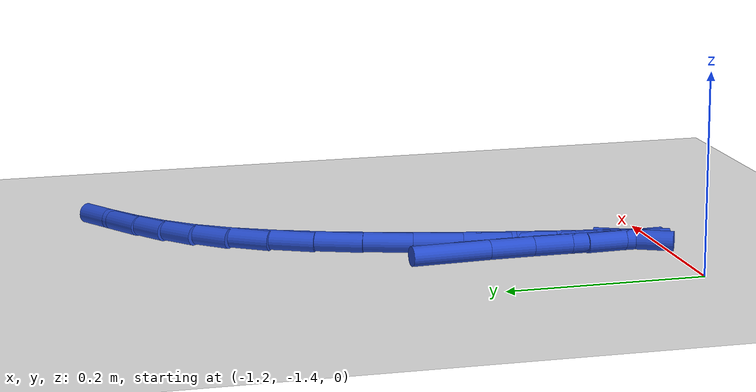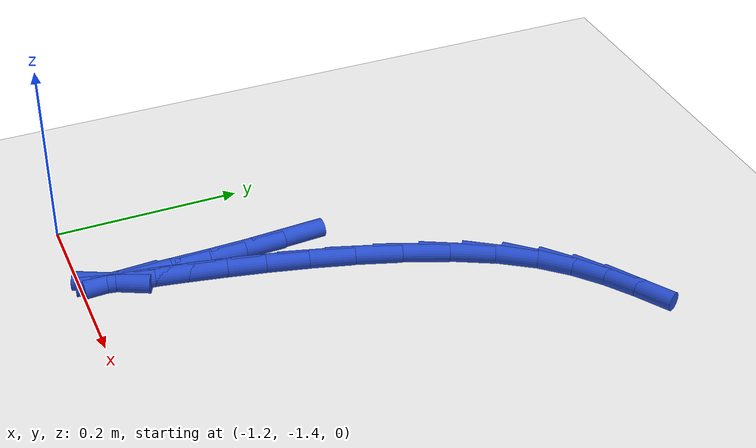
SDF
<sdf version="1.6">
 <world name="default">
  <model name="ground_plane">
   <static>1</static>
   <link name="link">
    <collision name="collision">
     <geometry><plane><normal>0 0 1</normal><size>100 100</size></plane></geometry>
     <surface><friction><ode><mu>100</mu><mu2>50</mu2></ode></friction></surface>
    </collision>
    <visual name="visual">
     <cast_shadows>0</cast_shadows>
     <geometry><plane><normal>0 0 1</normal><size>100 100</size></plane></geometry>
     <material>
      <script><uri>file://media/materials/scripts/gazebo.material</uri><name>Gazebo/WhiteGlow</name></script>
     </material>
    </visual>
   </link>
  </model>
  <model name="line">
   <link name="link_201">
    <pose>-1.0893821361360867 -1.1784222384112564 0.01 0 1.57 -1.5099549078218284</pose>
    <collision name="collision">
     <geometry><cylinder><radius>0.01</radius><length>0.08</length></cylinder></geometry>
    </collision>
    <visual name="visual">
     <material>
      <script><name>Gazebo/Blue</name><uri>file://media/materials/scripts/gazebo.material</uri></script>
     </material>
     <geometry><cylinder><radius>0.01</radius><length>0.08</length></cylinder></geometry>
    </visual>
   </link>
   <link name="link_202">
    <pose>-1.0866013172742164 -1.2240718440491876 0.01 0 1.57 -1.5435516769465956</pose>
    <collision name="collision">
     <geometry><cylinder><radius>0.01</radius><length>0.08</length></cylinder></geometry>
    </collision>
    <visual name="visual">
     <material>
      <script><name>Gazebo/Blue</name><uri>file://media/materials/scripts/gazebo.material</uri></script>
     </material>
     <geometry><cylinder><radius>0.01</radius><length>0.08</length></cylinder></geometry>
    </visual>
   </link>
   <link name="link_203">
    <pose>-1.0854175443406384 -1.267510832336968 0.01 0 1.57 -1.5667441597692473</pose>
    <collision name="collision">
     <geometry><cylinder><radius>0.01</radius><length>0.08</length></cylinder></geometry>
    </collision>
    <visual name="visual">
     <material>
      <script><name>Gazebo/Blue</name><uri>file://media/materials/scripts/gazebo.material</uri></script>
     </material>
     <geometry><cylinder><radius>0.01</radius><length>0.08</length></cylinder></geometry>
    </visual>
   </link>
   <link name="link_204">
    <pose>-1.0852605089746854 -1.3062640489364228 0.01 0 1.57 1.5613198097956762</pose>
    <collision name="collision">
     <geometry><cylinder><radius>0.01</radius><length>0.08</length></cylinder></geometry>
    </collision>
    <visual name="visual">
     <material>
      <script><name>Gazebo/Blue</name><uri>file://media/materials/scripts/gazebo.material</uri></script>
     </material>
     <geometry><cylinder><radius>0.01</radius><length>0.08</length></cylinder></geometry>
    </visual>
   </link>
   <link name="link_205">
    <pose>-1.0855599028156901 -1.3378563395093743 0.01 0 1.57 1.5623472241925498</pose>
    <collision name="collision">
     <geometry><cylinder><radius>0.01</radius><length>0.08</length></cylinder></geometry>
    </collision>
    <visual name="visual">
     <material>
      <script><name>Gazebo/Blue</name><uri>file://media/materials/scripts/gazebo.material</uri></script>
     </material>
     <geometry><cylinder><radius>0.01</radius><length>0.08</length></cylinder></geometry>
    </visual>
   </link>
   <link name="link_206">
    <pose>-1.085745417502986 -1.359812549717648 0.01 0 1.57 -1.5203960471916462</pose>
    <collision name="collision">
     <geometry><cylinder><radius>0.01</radius><length>0.08</length></cylinder></geometry>
    </collision>
    <visual name="visual">
     <material>
      <script><name>Gazebo/Blue</name><uri>file://media/materials/scripts/gazebo.material</uri></script>
     </material>
     <geometry><cylinder><radius>0.01</radius><length>0.08</length></cylinder></geometry>
    </visual>
   </link>
   <link name="link_207">
    <pose>-1.085248132235438 -1.3696709103077611 0.01 0 1.57 1.119772440966508</pose>
    <collision name="collision">
     <geometry><cylinder><radius>0.01</radius><length>0.08</length></cylinder></geometry>
    </collision>
    <visual name="visual">
     <material>
      <script><name>Gazebo/Blue</name><uri>file://media/materials/scripts/gazebo.material</uri></script>
     </material>
     <geometry><cylinder><radius>0.01</radius><length>0.08</length></cylinder></geometry>
    </visual>
   </link>
   <link name="link_208">
    <pose>-1.08364289087235 -1.3663564769589966 0.01 0 1.57 1.3814901009448788</pose>
    <collision name="collision">
     <geometry><cylinder><radius>0.01</radius><length>0.08</length></cylinder></geometry>
    </collision>
    <visual name="visual">
     <material>
      <script><name>Gazebo/Blue</name><uri>file://media/materials/scripts/gazebo.material</uri></script>
     </material>
     <geometry><cylinder><radius>0.01</radius><length>0.08</length></cylinder></geometry>
    </visual>
   </link>
   <link name="link_209">
    <pose>-1.0807716296163246 -1.3513708100348139 0.01 0 1.57 1.4009400455428023</pose>
    <collision name="collision">
     <geometry><cylinder><radius>0.01</radius><length>0.08</length></cylinder></geometry>
    </collision>
    <visual name="visual">
     <material>
      <script><name>Gazebo/Blue</name><uri>file://media/materials/scripts/gazebo.material</uri></script>
     </material>
     <geometry><cylinder><radius>0.01</radius><length>0.08</length></cylinder></geometry>
    </visual>
   </link>
   <link name="link_210">
    <pose>-1.0765053454093902 -1.3264958041468793 0.01 0 1.57 1.3970099627679942</pose>
    <collision name="collision">
     <geometry><cylinder><radius>0.01</radius><length>0.08</length></cylinder></geometry>
    </collision>
    <visual name="visual">
     <material>
      <script><name>Gazebo/Blue</name><uri>file://media/materials/scripts/gazebo.material</uri></script>
     </material>
     <geometry><cylinder><radius>0.01</radius><length>0.08</length></cylinder></geometry>
    </visual>
   </link>
   <link name="link_211">
    <pose>-1.0707150351935781 -1.2935133539068617 0.01 0 1.57 1.3836527331481097</pose>
    <collision name="collision">
     <geometry><cylinder><radius>0.01</radius><length>0.08</length></cylinder></geometry>
    </collision>
    <visual name="visual">
     <material>
      <script><name>Gazebo/Blue</name><uri>file://media/materials/scripts/gazebo.material</uri></script>
     </material>
     <geometry><cylinder><radius>0.01</radius><length>0.08</length></cylinder></geometry>
    </visual>
   </link>
   <link name="link_212">
    <pose>-1.0632716959109163 -1.2542053539264275 0.01 0 1.57 1.3634432633721643</pose>
    <collision name="collision">
     <geometry><cylinder><radius>0.01</radius><length>0.08</length></cylinder></geometry>
    </collision>
    <visual name="visual">
     <material>
      <script><name>Gazebo/Blue</name><uri>file://media/materials/scripts/gazebo.material</uri></script>
     </material>
     <geometry><cylinder><radius>0.01</radius><length>0.08</length></cylinder></geometry>
    </visual>
   </link>
   <link name="link_213">
    <pose>-1.0540463245034353 -1.2103536988172436 0.01 0 1.57 1.3362823281799938</pose>
    <collision name="collision">
     <geometry><cylinder><radius>0.01</radius><length>0.08</length></cylinder></geometry>
    </collision>
    <visual name="visual">
     <material>
      <script><name>Gazebo/Blue</name><uri>file://media/materials/scripts/gazebo.material</uri></script>
     </material>
     <geometry><cylinder><radius>0.01</radius><length>0.08</length></cylinder></geometry>
    </visual>
   </link>
   <link name="link_214">
    <pose>-1.0429099179131647 -1.1637402831909807 0.01 0 1.57 1.3007062222505306</pose>
    <collision name="collision">
     <geometry><cylinder><radius>0.01</radius><length>0.08</length></cylinder></geometry>
    </collision>
    <visual name="visual">
     <material>
      <script><name>Gazebo/Blue</name><uri>file://media/materials/scripts/gazebo.material</uri></script>
     </material>
     <geometry><cylinder><radius>0.01</radius><length>0.08</length></cylinder></geometry>
    </visual>
   </link>
   <link name="link_215">
    <pose>-1.0297334730821341 -1.1161470016593045 0.01 0 1.57 1.2538928837933083</pose>
    <collision name="collision">
     <geometry><cylinder><radius>0.01</radius><length>0.08</length></cylinder></geometry>
    </collision>
    <visual name="visual">
     <material>
      <script><name>Gazebo/Blue</name><uri>file://media/materials/scripts/gazebo.material</uri></script>
     </material>
     <geometry><cylinder><radius>0.01</radius><length>0.08</length></cylinder></geometry>
    </visual>
   </link>
   <link name="link_216">
    <pose>-1.014387986952373 -1.0693557488338832 0.01 0 1.57 1.1910585346294407</pose>
    <collision name="collision">
     <geometry><cylinder><radius>0.01</radius><length>0.08</length></cylinder></geometry>
    </collision>
    <visual name="visual">
     <material>
      <script><name>Gazebo/Blue</name><uri>file://media/materials/scripts/gazebo.material</uri></script>
     </material>
     <geometry><cylinder><radius>0.01</radius><length>0.08</length></cylinder></geometry>
    </visual>
   </link>
   <link name="link_217">
    <pose>-0.9967444564659116 -1.025148419326385 0.01 0 1.57 1.1041448831460305</pose>
    <collision name="collision">
     <geometry><cylinder><radius>0.01</radius><length>0.08</length></cylinder></geometry>
    </collision>
    <visual name="visual">
     <material>
      <script><name>Gazebo/Blue</name><uri>file://media/materials/scripts/gazebo.material</uri></script>
     </material>
     <geometry><cylinder><radius>0.01</radius><length>0.08</length></cylinder></geometry>
    </visual>
   </link>
   <link name="link_218">
    <pose>-0.976673878564779 -0.9853069077484762 0.01 0 1.57 0.9808519543670113</pose>
    <collision name="collision">
     <geometry><cylinder><radius>0.01</radius><length>0.08</length></cylinder></geometry>
    </collision>
    <visual name="visual">
     <material>
      <script><name>Gazebo/Blue</name><uri>file://media/materials/scripts/gazebo.material</uri></script>
     </material>
     <geometry><cylinder><radius>0.01</radius><length>0.08</length></cylinder></geometry>
    </visual>
   </link>
   <link name="link_219">
    <pose>-0.9540626194705556 -0.9515322988519656 0.01 0 1.57 0.8362951013649679</pose>
    <collision name="collision">
     <geometry><cylinder><radius>0.01</radius><length>0.08</length></cylinder></geometry>
    </collision>
    <visual name="visual">
     <material>
      <script><name>Gazebo/Blue</name><uri>file://media/materials/scripts/gazebo.material</uri></script>
     </material>
     <geometry><cylinder><radius>0.01</radius><length>0.08</length></cylinder></geometry>
    </visual>
   </link>
   <link name="link_220">
    <pose>-0.929106731181188 -0.9238973860880022 0.01 0 1.57 0.7074623010002005</pose>
    <collision name="collision">
     <geometry><cylinder><radius>0.01</radius><length>0.08</length></cylinder></geometry>
    </collision>
    <visual name="visual">
     <material>
      <script><name>Gazebo/Blue</name><uri>file://media/materials/scripts/gazebo.material</uri></script>
     </material>
     <geometry><cylinder><radius>0.01</radius><length>0.08</length></cylinder></geometry>
    </visual>
   </link>
   <link name="link_221">
    <pose>-0.9022894079395688 -0.9009652028374644 0.01 0 1.57 0.6105874469443884</pose>
    <collision name="collision">
     <geometry><cylinder><radius>0.01</radius><length>0.08</length></cylinder></geometry>
    </collision>
    <visual name="visual">
     <material>
      <script><name>Gazebo/Blue</name><uri>file://media/materials/scripts/gazebo.material</uri></script>
     </material>
     <geometry><cylinder><radius>0.01</radius><length>0.08</length></cylinder></geometry>
    </visual>
   </link>
   <link name="link_222">
    <pose>-0.8741046964864588 -0.8812417213269214 0.01 0 1.57 0.5547772711405596</pose>
    <collision name="collision">
     <geometry><cylinder><radius>0.01</radius><length>0.08</length></cylinder></geometry>
    </collision>
    <visual name="visual">
     <material>
      <script><name>Gazebo/Blue</name><uri>file://media/materials/scripts/gazebo.material</uri></script>
     </material>
     <geometry><cylinder><radius>0.01</radius><length>0.08</length></cylinder></geometry>
    </visual>
   </link>
  </model>
 </world>
</sdf>
